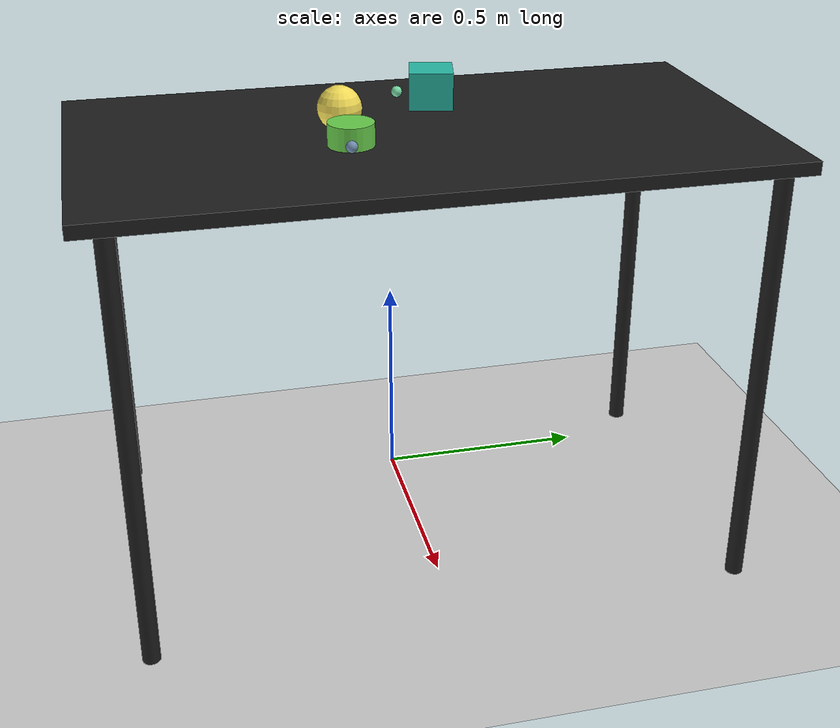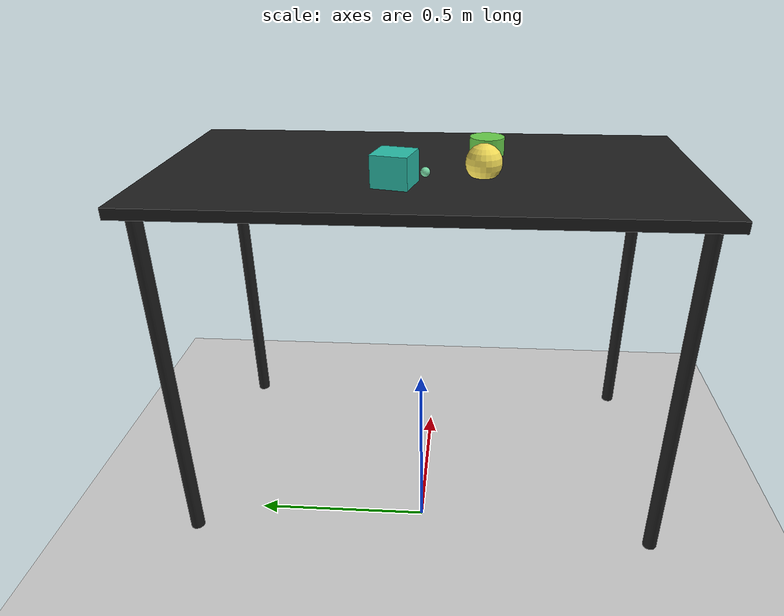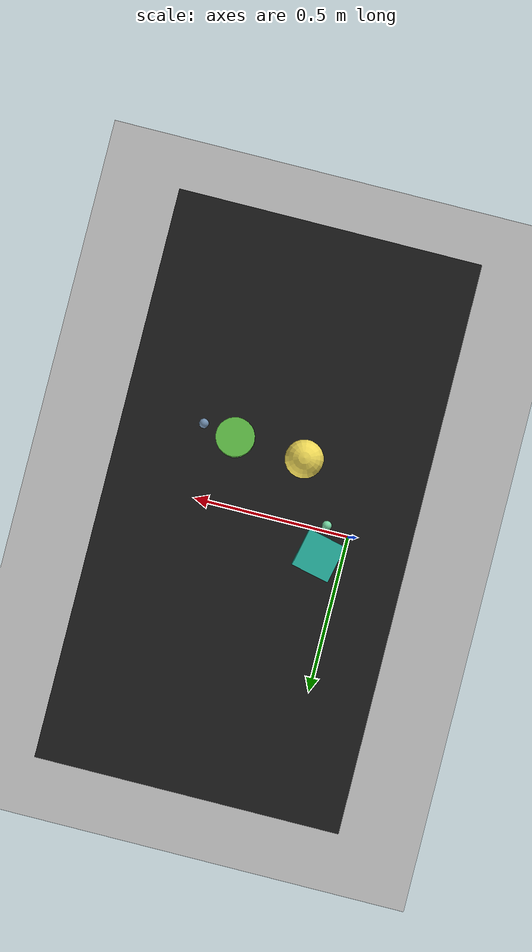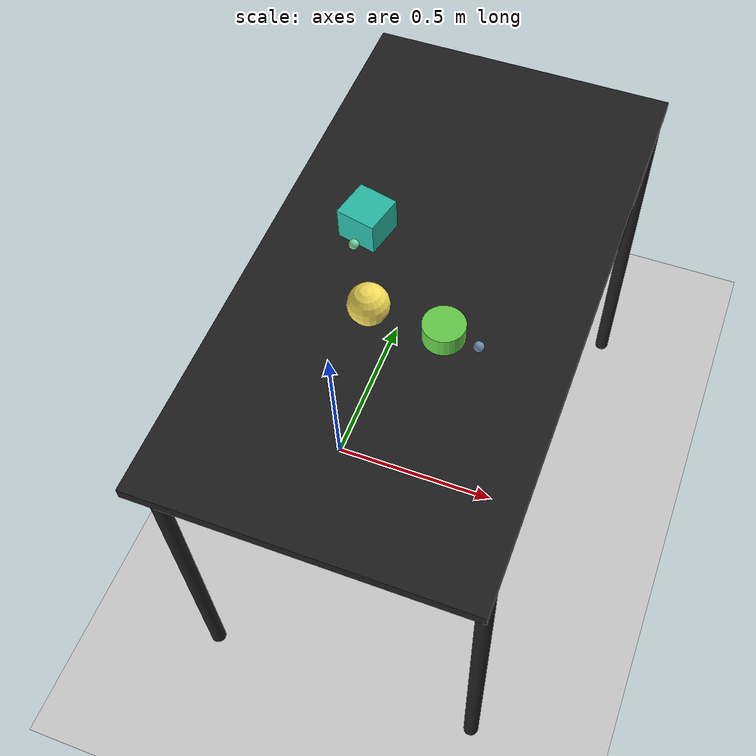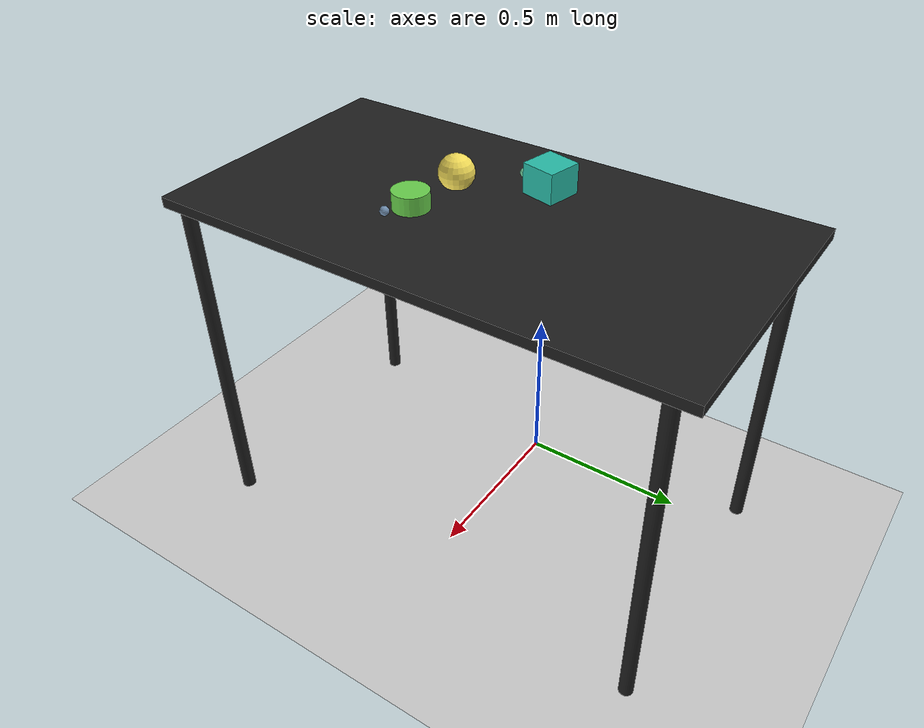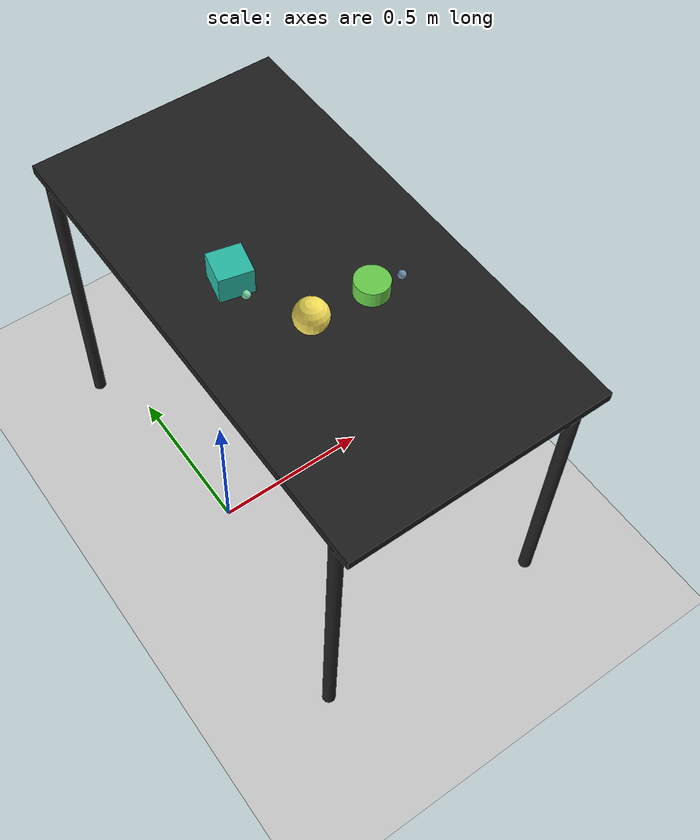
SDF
<?xml version="1.0" ?>
<sdf version="1.6">
  <world name="arm_world">
    <plugin filename="gz-sim-physics-system" name="gz::sim::systems::Physics">
      <engine>
        <filename>libgz-physics-bullet-featherstone-plugin.so</filename>
      </engine>
    </plugin>
    <plugin filename="gz-sim-user-commands-system" name="gz::sim::systems::UserCommands"/>
    <plugin filename="gz-sim-scene-broadcaster-system" name="gz::sim::systems::SceneBroadcaster"/>
    <plugin filename="gz-sim-sensors-system" name="gz::sim::systems::Sensors">
      <render_engine>ogre2</render_engine>
    </plugin>
    <gravity>0.0 0.0 -9.8</gravity>
    <scene>
      <shadows>false</shadows>
    </scene>
    <gui>
      <camera name="user_camera">
        <pose>0.75 -0.75 1.4 0 0.29 2.21</pose>
      </camera>
    </gui>
    <include>
      <uri>https://fuel.gazebosim.org/1.0/OpenRobotics/models/Sun</uri>
    </include>
    <model name="table">
      <static>true</static>
      <include>
        <uri>model://table</uri>
      </include>
      <pose>0.29 0 0 0 0 1.5708</pose>
    </model>
    <model name="ground_plane">
      <static>true</static>
      <link name="link">
        <collision name="collision">
          <geometry>
            <plane>
              <normal>0 0 1</normal>
            </plane>
          </geometry>
          <surface>
            <friction>
              <ode>
                <mu>1.0</mu>
                <mu2>1.0</mu2>
              </ode>
            </friction>
          </surface>
        </collision>
        <visual name="visual">
          <geometry>
            <plane>
              <normal>0 0 1</normal>
              <size>100 100</size>
            </plane>
          </geometry>
          <material>
            <ambient>0.8 0.8 0.8 1</ambient>
            <diffuse>0.8 0.8 0.8 1</diffuse>
            <specular>0.8 0.8 0.8 1</specular>
          </material>
        </visual>
      </link>
    </model>
    <model name="sphere_s_0">
      <pose>0.113 -0.005 1.05 0 0 4.92</pose>
      <link name="sphere_s_0_link">
        <collision name="sphere_s_0_collision">
          <geometry>
            <sphere>
              <radius>0.0125</radius>
            </sphere>
          </geometry>
        </collision>
        <visual name="sphere_s_0_visual">
          <geometry>
            <sphere>
              <radius>0.0125</radius>
            </sphere>
          </geometry>
          <material>
            <ambient>0.48 0.87 0.66 1</ambient>
            <diffuse>0.48 0.87 0.66 1</diffuse>
          </material>
        </visual>
        <velocity_decay>
          <linear>1</linear>
          <angular>1</angular>
        </velocity_decay>
      </link>
    </model>
    <model name="sphere_l_1">
      <pose>0.21 -0.155 1.05 0 0 0.43</pose>
      <link name="sphere_l_1_link">
        <collision name="sphere_l_1_collision">
          <geometry>
            <sphere>
              <radius>0.05</radius>
            </sphere>
          </geometry>
        </collision>
        <visual name="sphere_l_1_visual">
          <geometry>
            <sphere>
              <radius>0.05</radius>
            </sphere>
          </geometry>
          <material>
            <ambient>0.97 0.88 0.35 1</ambient>
            <diffuse>0.97 0.88 0.35 1</diffuse>
          </material>
        </visual>
        <velocity_decay>
          <linear>1</linear>
          <angular>1</angular>
        </velocity_decay>
      </link>
    </model>
    <model name="cylinder_l_2">
      <pose>0.393 -0.165 1.05 0 0 4.77</pose>
      <link name="cylinder_l_2_link">
        <collision name="cylinder_l_2_collision">
          <geometry>
            <cylinder>
              <radius>0.05</radius>
              <length>0.05</length>
            </cylinder>
          </geometry>
        </collision>
        <visual name="cylinder_l_2_visual">
          <geometry>
            <cylinder>
              <radius>0.05</radius>
              <length>0.05</length>
            </cylinder>
          </geometry>
          <material>
            <ambient>0.41 0.81 0.3 1</ambient>
            <diffuse>0.41 0.81 0.3 1</diffuse>
          </material>
        </visual>
        <velocity_decay>
          <linear>1</linear>
          <angular>1</angular>
        </velocity_decay>
      </link>
    </model>
    <model name="sphere_s_3">
      <pose>0.479 -0.18 1.05 0 0 0.8</pose>
      <link name="sphere_s_3_link">
        <collision name="sphere_s_3_collision">
          <geometry>
            <sphere>
              <radius>0.0125</radius>
            </sphere>
          </geometry>
        </collision>
        <visual name="sphere_s_3_visual">
          <geometry>
            <sphere>
              <radius>0.0125</radius>
            </sphere>
          </geometry>
          <material>
            <ambient>0.45 0.57 0.7 1</ambient>
            <diffuse>0.45 0.57 0.7 1</diffuse>
          </material>
        </visual>
        <velocity_decay>
          <linear>1</linear>
          <angular>1</angular>
        </velocity_decay>
      </link>
    </model>
    <model name="cube_l_4">
      <pose>0.116 0.074 1.05 0 0 4.49</pose>
      <link name="cube_l_4_link">
        <collision name="cube_l_4_collision">
          <geometry>
            <box>
              <size>0.1 0.1 0.1</size>
            </box>
          </geometry>
        </collision>
        <visual name="cube_l_4_visual">
          <geometry>
            <box>
              <size>0.1 0.1 0.1</size>
            </box>
          </geometry>
          <material>
            <ambient>0.16 0.74 0.66 1</ambient>
            <diffuse>0.16 0.74 0.66 1</diffuse>
          </material>
        </visual>
        <velocity_decay>
          <linear>1</linear>
          <angular>1</angular>
        </velocity_decay>
      </link>
    </model>
  </world>
</sdf>

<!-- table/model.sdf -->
<sdf version="1.5">
  <model name="table">
    <static>true</static>
    <link name="link">
      <collision name="surface">
        <pose>0 0 1.0 0 0 0</pose>
        <geometry>
          <box>
            <size>1.5 0.8 0.03</size>
          </box>
        </geometry>
        <surface>
          <friction>
            <ode>
              <mu>0.6</mu>
              <mu2>0.6</mu2>
            </ode>
          </friction>
        </surface>
      </collision>
      <visual name="surface">
        <pose>0 0 1.0 0 0 0</pose>
        <geometry>
          <box>
            <size>1.5 0.8 0.03</size>
          </box>
        </geometry>
        <material>
          <script>
            <uri>file://media/materials/scripts/gazebo.material</uri>
            <name>Gazebo/Black</name>
          </script>
        </material>
      </visual>
      <collision name="front_left_leg">
        <pose>0.68 0.38 0.5 0 0 0</pose>
        <geometry>
          <cylinder>
            <radius>0.02</radius>
            <length>1.0</length>
          </cylinder>
        </geometry>
      </collision>
      <visual name="front_left_leg">
        <pose>0.68 0.38 0.5 0 0 0</pose>
        <geometry>
          <cylinder>
            <radius>0.02</radius>
            <length>1.0</length>
          </cylinder>
        </geometry>
        <material>
          <script>
            <uri>file://media/materials/scripts/gazebo.material</uri>
            <name>Gazebo/Black</name>
          </script>
        </material>
      </visual>
      <collision name="front_right_leg">
        <pose>0.68 -0.38 0.5 0 0 0</pose>
        <geometry>
          <cylinder>
            <radius>0.02</radius>
            <length>1.0</length>
          </cylinder>
        </geometry>
      </collision>
      <visual name="front_right_leg">
        <pose>0.68 -0.38 0.5 0 0 0</pose>
        <geometry>
          <cylinder>
            <radius>0.02</radius>
            <length>1.0</length>
          </cylinder>
        </geometry>
        <material>
          <script>
            <uri>file://media/materials/scripts/gazebo.material</uri>
            <name>Gazebo/Black</name>
          </script>
        </material>
      </visual>
      <collision name="back_right_leg">
        <pose>-0.68 -0.38 0.5 0 0 0</pose>
        <geometry>
          <cylinder>
            <radius>0.02</radius>
            <length>1.0</length>
          </cylinder>
        </geometry>
      </collision>
      <visual name="back_right_leg">
        <pose>-0.68 -0.38 0.5 0 0 0</pose>
        <geometry>
          <cylinder>
            <radius>0.02</radius>
            <length>1.0</length>
          </cylinder>
        </geometry>
        <material>
          <script>
            <uri>file://media/materials/scripts/gazebo.material</uri>
            <name>Gazebo/Black</name>
          </script>
        </material>
      </visual>
      <collision name="back_left_leg">
        <pose>-0.68 0.38 0.5 0 0 0</pose>
        <geometry>
          <cylinder>
            <radius>0.02</radius>
            <length>1.0</length>
          </cylinder>
        </geometry>
      </collision>
      <visual name="back_left_leg">
        <pose>-0.68 0.38 0.5 0 0 0</pose>
        <geometry>
          <cylinder>
            <radius>0.02</radius>
            <length>1.0</length>
          </cylinder>
        </geometry>
        <material>
          <script>
            <uri>file://media/materials/scripts/gazebo.material</uri>
            <name>Gazebo/Black</name>
          </script>
        </material>
      </visual>
    </link>
  </model>
</sdf>
